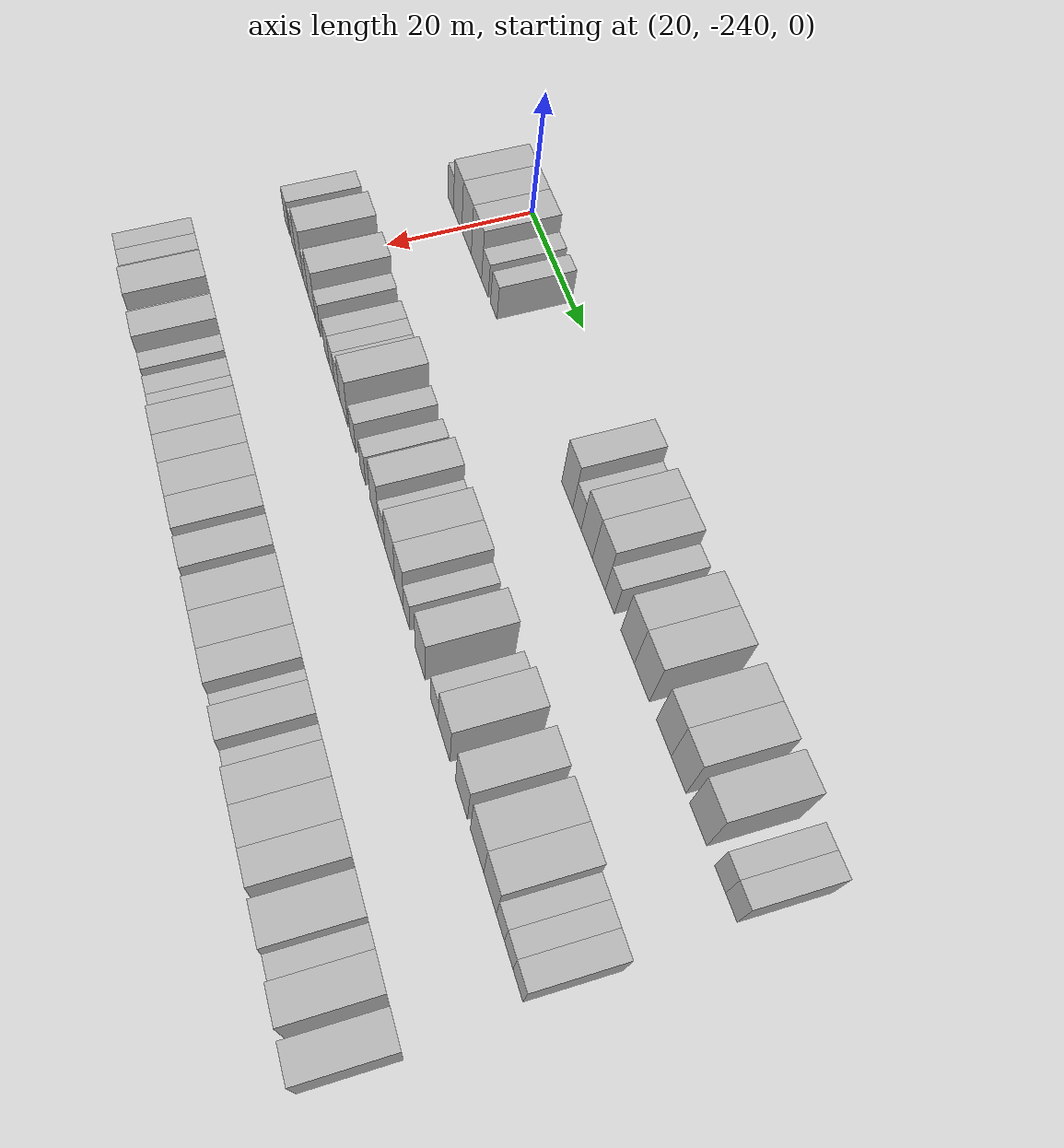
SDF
<sdf version="1.6">
 <world name="default">
  <model name="building_1">
   <static>1</static>
   <pose>25.0000 -244.7175 0 0.000000 0.000000 0.000000</pose>
   <link name="link">
    <pose>0 0 3.00 0 0 0</pose>
    <collision name="collision"><geometry><box><size>10.0000 2.5651 6.0000</size></box></geometry></collision>
    <visual name="visual">
     <cast_shadows>0</cast_shadows>
     <geometry><box><size>10.0000 2.5651 6.0000</size></box></geometry>
     <material>
      <script>
       <uri>model://HANNAS_wall/materials/scripts</uri>
       <uri>model://HANNAS_wall/materials/textures</uri>
       <name>vrc/HANNAS_wall</name>
      </script>
     </material>
    </visual>
   </link>
  </model>
  <model name="building_2">
   <static>1</static>
   <pose>25.0000 -241.5264 0 0.000000 0.000000 0.000000</pose>
   <link name="link">
    <pose>0 0 4.50 0 0 0</pose>
    <collision name="collision"><geometry><box><size>10.0000 3.8170 9.0000</size></box></geometry></collision>
    <visual name="visual">
     <cast_shadows>0</cast_shadows>
     <geometry><box><size>10.0000 3.8170 9.0000</size></box></geometry>
     <material>
      <script>
       <uri>model://HANNAS_wall/materials/scripts</uri>
       <uri>model://HANNAS_wall/materials/textures</uri>
       <name>vrc/HANNAS_wall</name>
      </script>
     </material>
    </visual>
   </link>
  </model>
  <model name="building_3">
   <static>1</static>
   <pose>25.0000 -237.4763 0 0.000000 0.000000 0.000000</pose>
   <link name="link">
    <pose>0 0 4.50 0 0 0</pose>
    <collision name="collision"><geometry><box><size>10.0000 4.2832 9.0000</size></box></geometry></collision>
    <visual name="visual">
     <cast_shadows>0</cast_shadows>
     <geometry><box><size>10.0000 4.2832 9.0000</size></box></geometry>
     <material>
      <script>
       <uri>model://HANNAS_wall/materials/scripts</uri>
       <uri>model://HANNAS_wall/materials/textures</uri>
       <name>vrc/HANNAS_wall</name>
      </script>
     </material>
    </visual>
   </link>
  </model>
  <model name="building_4">
   <static>1</static>
   <pose>25.0000 -233.0855 0 0.000000 0.000000 0.000000</pose>
   <link name="link">
    <pose>0 0 4.50 0 0 0</pose>
    <collision name="collision"><geometry><box><size>10.0000 4.4983 9.0000</size></box></geometry></collision>
    <visual name="visual">
     <cast_shadows>0</cast_shadows>
     <geometry><box><size>10.0000 4.4983 9.0000</size></box></geometry>
     <material>
      <script>
       <uri>model://HANNAS_wall/materials/scripts</uri>
       <uri>model://HANNAS_wall/materials/textures</uri>
       <name>vrc/HANNAS_wall</name>
      </script>
     </material>
    </visual>
   </link>
  </model>
  <model name="building_5">
   <static>1</static>
   <pose>25.0000 -229.4291 0 0.000000 0.000000 0.000000</pose>
   <link name="link">
    <pose>0 0 3.00 0 0 0</pose>
    <collision name="collision"><geometry><box><size>10.0000 2.8145 6.0000</size></box></geometry></collision>
    <visual name="visual">
     <cast_shadows>0</cast_shadows>
     <geometry><box><size>10.0000 2.8145 6.0000</size></box></geometry>
     <material>
      <script>
       <uri>model://HANNAS_wall/materials/scripts</uri>
       <uri>model://HANNAS_wall/materials/textures</uri>
       <name>vrc/HANNAS_wall</name>
      </script>
     </material>
    </visual>
   </link>
  </model>
  <model name="building_6">
   <static>1</static>
   <pose>25.0000 -225.6760 0 0.000000 0.000000 0.000000</pose>
   <link name="link">
    <pose>0 0 3.00 0 0 0</pose>
    <collision name="collision"><geometry><box><size>10.0000 2.6918 6.0000</size></box></geometry></collision>
    <visual name="visual">
     <cast_shadows>0</cast_shadows>
     <geometry><box><size>10.0000 2.6918 6.0000</size></box></geometry>
     <material>
      <script>
       <uri>model://HANNAS_wall/materials/scripts</uri>
       <uri>model://HANNAS_wall/materials/textures</uri>
       <name>vrc/HANNAS_wall</name>
      </script>
     </material>
    </visual>
   </link>
  </model>
  <model name="building_7">
   <static>1</static>
   <pose>25.0000 -197.6810 0 0.000000 0.000000 0.000000</pose>
   <link name="link">
    <pose>0 0 4.50 0 0 0</pose>
    <collision name="collision"><geometry><box><size>10.0000 3.7661 9.0000</size></box></geometry></collision>
    <visual name="visual">
     <cast_shadows>0</cast_shadows>
     <geometry><box><size>10.0000 3.7661 9.0000</size></box></geometry>
     <material>
      <script>
       <uri>model://HANNAS_wall/materials/scripts</uri>
       <uri>model://HANNAS_wall/materials/textures</uri>
       <name>vrc/HANNAS_wall</name>
      </script>
     </material>
    </visual>
   </link>
  </model>
  <model name="building_8">
   <static>1</static>
   <pose>25.0000 -194.3592 0 0.000000 0.000000 0.000000</pose>
   <link name="link">
    <pose>0 0 3.00 0 0 0</pose>
    <collision name="collision"><geometry><box><size>10.0000 2.8775 6.0000</size></box></geometry></collision>
    <visual name="visual">
     <cast_shadows>0</cast_shadows>
     <geometry><box><size>10.0000 2.8775 6.0000</size></box></geometry>
     <material>
      <script>
       <uri>model://HANNAS_wall/materials/scripts</uri>
       <uri>model://HANNAS_wall/materials/textures</uri>
       <name>vrc/HANNAS_wall</name>
      </script>
     </material>
    </visual>
   </link>
  </model>
  <model name="building_9">
   <static>1</static>
   <pose>25.0000 -191.0394 0 0.000000 0.000000 0.000000</pose>
   <link name="link">
    <pose>0 0 4.50 0 0 0</pose>
    <collision name="collision"><geometry><box><size>10.0000 3.7622 9.0000</size></box></geometry></collision>
    <visual name="visual">
     <cast_shadows>0</cast_shadows>
     <geometry><box><size>10.0000 3.7622 9.0000</size></box></geometry>
     <material>
      <script>
       <uri>model://HANNAS_wall/materials/scripts</uri>
       <uri>model://HANNAS_wall/materials/textures</uri>
       <name>vrc/HANNAS_wall</name>
      </script>
     </material>
    </visual>
   </link>
  </model>
  <model name="building_10">
   <static>1</static>
   <pose>25.0000 -187.0936 0 0.000000 0.000000 0.000000</pose>
   <link name="link">
    <pose>0 0 4.50 0 0 0</pose>
    <collision name="collision"><geometry><box><size>10.0000 4.1294 9.0000</size></box></geometry></collision>
    <visual name="visual">
     <cast_shadows>0</cast_shadows>
     <geometry><box><size>10.0000 4.1294 9.0000</size></box></geometry>
     <material>
      <script>
       <uri>model://HANNAS_wall/materials/scripts</uri>
       <uri>model://HANNAS_wall/materials/textures</uri>
       <name>vrc/HANNAS_wall</name>
      </script>
     </material>
    </visual>
   </link>
  </model>
  <model name="building_11">
   <static>1</static>
   <pose>25.0000 -183.5740 0 0.000000 0.000000 0.000000</pose>
   <link name="link">
    <pose>0 0 3.00 0 0 0</pose>
    <collision name="collision"><geometry><box><size>10.0000 2.9100 6.0000</size></box></geometry></collision>
    <visual name="visual">
     <cast_shadows>0</cast_shadows>
     <geometry><box><size>10.0000 2.9100 6.0000</size></box></geometry>
     <material>
      <script>
       <uri>model://HANNAS_wall/materials/scripts</uri>
       <uri>model://HANNAS_wall/materials/textures</uri>
       <name>vrc/HANNAS_wall</name>
      </script>
     </material>
    </visual>
   </link>
  </model>
  <model name="building_12">
   <static>1</static>
   <pose>25.0000 -178.0836 0 0.000000 0.000000 0.000000</pose>
   <link name="link">
    <pose>0 0 4.50 0 0 0</pose>
    <collision name="collision"><geometry><box><size>10.0000 4.0708 9.0000</size></box></geometry></collision>
    <visual name="visual">
     <cast_shadows>0</cast_shadows>
     <geometry><box><size>10.0000 4.0708 9.0000</size></box></geometry>
     <material>
      <script>
       <uri>model://HANNAS_wall/materials/scripts</uri>
       <uri>model://HANNAS_wall/materials/textures</uri>
       <name>vrc/HANNAS_wall</name>
      </script>
     </material>
    </visual>
   </link>
  </model>
  <model name="building_13">
   <static>1</static>
   <pose>25.0000 -173.8300 0 0.000000 0.000000 0.000000</pose>
   <link name="link">
    <pose>0 0 4.50 0 0 0</pose>
    <collision name="collision"><geometry><box><size>10.0000 4.4364 9.0000</size></box></geometry></collision>
    <visual name="visual">
     <cast_shadows>0</cast_shadows>
     <geometry><box><size>10.0000 4.4364 9.0000</size></box></geometry>
     <material>
      <script>
       <uri>model://HANNAS_wall/materials/scripts</uri>
       <uri>model://HANNAS_wall/materials/textures</uri>
       <name>vrc/HANNAS_wall</name>
      </script>
     </material>
    </visual>
   </link>
  </model>
  <model name="building_14">
   <static>1</static>
   <pose>25.0000 -167.5434 0 0.000000 0.000000 0.000000</pose>
   <link name="link">
    <pose>0 0 4.50 0 0 0</pose>
    <collision name="collision"><geometry><box><size>10.0000 4.1368 9.0000</size></box></geometry></collision>
    <visual name="visual">
     <cast_shadows>0</cast_shadows>
     <geometry><box><size>10.0000 4.1368 9.0000</size></box></geometry>
     <material>
      <script>
       <uri>model://HANNAS_wall/materials/scripts</uri>
       <uri>model://HANNAS_wall/materials/textures</uri>
       <name>vrc/HANNAS_wall</name>
      </script>
     </material>
    </visual>
   </link>
  </model>
  <model name="building_15">
   <static>1</static>
   <pose>25.0000 -163.4816 0 0.000000 0.000000 0.000000</pose>
   <link name="link">
    <pose>0 0 4.50 0 0 0</pose>
    <collision name="collision"><geometry><box><size>10.0000 3.9867 9.0000</size></box></geometry></collision>
    <visual name="visual">
     <cast_shadows>0</cast_shadows>
     <geometry><box><size>10.0000 3.9867 9.0000</size></box></geometry>
     <material>
      <script>
       <uri>model://HANNAS_wall/materials/scripts</uri>
       <uri>model://HANNAS_wall/materials/textures</uri>
       <name>vrc/HANNAS_wall</name>
      </script>
     </material>
    </visual>
   </link>
  </model>
  <model name="building_16">
   <static>1</static>
   <pose>25.0000 -158.2606 0 0.000000 0.000000 0.000000</pose>
   <link name="link">
    <pose>0 0 4.50 0 0 0</pose>
    <collision name="collision"><geometry><box><size>10.0000 4.4554 9.0000</size></box></geometry></collision>
    <visual name="visual">
     <cast_shadows>0</cast_shadows>
     <geometry><box><size>10.0000 4.4554 9.0000</size></box></geometry>
     <material>
      <script>
       <uri>model://HANNAS_wall/materials/scripts</uri>
       <uri>model://HANNAS_wall/materials/textures</uri>
       <name>vrc/HANNAS_wall</name>
      </script>
     </material>
    </visual>
   </link>
  </model>
  <model name="building_17">
   <static>1</static>
   <pose>25.0000 -152.6770 0 0.000000 0.000000 0.000000</pose>
   <link name="link">
    <pose>0 0 3.00 0 0 0</pose>
    <collision name="collision"><geometry><box><size>10.0000 2.7118 6.0000</size></box></geometry></collision>
    <visual name="visual">
     <cast_shadows>0</cast_shadows>
     <geometry><box><size>10.0000 2.7118 6.0000</size></box></geometry>
     <material>
      <script>
       <uri>model://HANNAS_wall/materials/scripts</uri>
       <uri>model://HANNAS_wall/materials/textures</uri>
       <name>vrc/HANNAS_wall</name>
      </script>
     </material>
    </visual>
   </link>
  </model>
  <model name="building_18">
   <static>1</static>
   <pose>25.0000 -149.9093 0 0.000000 0.000000 0.000000</pose>
   <link name="link">
    <pose>0 0 3.00 0 0 0</pose>
    <collision name="collision"><geometry><box><size>10.0000 2.8237 6.0000</size></box></geometry></collision>
    <visual name="visual">
     <cast_shadows>0</cast_shadows>
     <geometry><box><size>10.0000 2.8237 6.0000</size></box></geometry>
     <material>
      <script>
       <uri>model://HANNAS_wall/materials/scripts</uri>
       <uri>model://HANNAS_wall/materials/textures</uri>
       <name>vrc/HANNAS_wall</name>
      </script>
     </material>
    </visual>
   </link>
  </model>
  <model name="building_109">
   <static>1</static>
   <pose>47.0000 -246.5582 0 0.000000 0.000000 0.000000</pose>
   <link name="link">
    <pose>0 0 3.00 0 0 0</pose>
    <collision name="collision"><geometry><box><size>10.0000 2.8836 6.0000</size></box></geometry></collision>
    <visual name="visual">
     <cast_shadows>0</cast_shadows>
     <geometry><box><size>10.0000 2.8836 6.0000</size></box></geometry>
     <material>
      <script>
       <uri>model://HANNAS_wall/materials/scripts</uri>
       <uri>model://HANNAS_wall/materials/textures</uri>
       <name>vrc/HANNAS_wall</name>
      </script>
     </material>
    </visual>
   </link>
  </model>
  <model name="building_110">
   <static>1</static>
   <pose>47.0000 -242.6752 0 0.000000 0.000000 0.000000</pose>
   <link name="link">
    <pose>0 0 3.00 0 0 0</pose>
    <collision name="collision"><geometry><box><size>10.0000 2.8824 6.0000</size></box></geometry></collision>
    <visual name="visual">
     <cast_shadows>0</cast_shadows>
     <geometry><box><size>10.0000 2.8824 6.0000</size></box></geometry>
     <material>
      <script>
       <uri>model://HANNAS_wall/materials/scripts</uri>
       <uri>model://HANNAS_wall/materials/textures</uri>
       <name>vrc/HANNAS_wall</name>
      </script>
     </material>
    </visual>
   </link>
  </model>
  <model name="building_111">
   <static>1</static>
   <pose>47.0000 -239.1597 0 0.000000 0.000000 0.000000</pose>
   <link name="link">
    <pose>0 0 4.50 0 0 0</pose>
    <collision name="collision"><geometry><box><size>10.0000 4.1484 9.0000</size></box></geometry></collision>
    <visual name="visual">
     <cast_shadows>0</cast_shadows>
     <geometry><box><size>10.0000 4.1484 9.0000</size></box></geometry>
     <material>
      <script>
       <uri>model://HANNAS_wall/materials/scripts</uri>
       <uri>model://HANNAS_wall/materials/textures</uri>
       <name>vrc/HANNAS_wall</name>
      </script>
     </material>
    </visual>
   </link>
  </model>
  <model name="building_112">
   <static>1</static>
   <pose>47.0000 -235.6971 0 0.000000 0.000000 0.000000</pose>
   <link name="link">
    <pose>0 0 3.00 0 0 0</pose>
    <collision name="collision"><geometry><box><size>10.0000 2.7768 6.0000</size></box></geometry></collision>
    <visual name="visual">
     <cast_shadows>0</cast_shadows>
     <geometry><box><size>10.0000 2.7768 6.0000</size></box></geometry>
     <material>
      <script>
       <uri>model://HANNAS_wall/materials/scripts</uri>
       <uri>model://HANNAS_wall/materials/textures</uri>
       <name>vrc/HANNAS_wall</name>
      </script>
     </material>
    </visual>
   </link>
  </model>
  <model name="building_113">
   <static>1</static>
   <pose>47.0000 -232.2926 0 0.000000 0.000000 0.000000</pose>
   <link name="link">
    <pose>0 0 4.50 0 0 0</pose>
    <collision name="collision"><geometry><box><size>10.0000 4.0321 9.0000</size></box></geometry></collision>
    <visual name="visual">
     <cast_shadows>0</cast_shadows>
     <geometry><box><size>10.0000 4.0321 9.0000</size></box></geometry>
     <material>
      <script>
       <uri>model://HANNAS_wall/materials/scripts</uri>
       <uri>model://HANNAS_wall/materials/textures</uri>
       <name>vrc/HANNAS_wall</name>
      </script>
     </material>
    </visual>
   </link>
  </model>
  <model name="building_114">
   <static>1</static>
   <pose>47.0000 -229.0246 0 0.000000 0.000000 0.000000</pose>
   <link name="link">
    <pose>0 0 3.00 0 0 0</pose>
    <collision name="collision"><geometry><box><size>10.0000 2.5040 6.0000</size></box></geometry></collision>
    <visual name="visual">
     <cast_shadows>0</cast_shadows>
     <geometry><box><size>10.0000 2.5040 6.0000</size></box></geometry>
     <material>
      <script>
       <uri>model://HANNAS_wall/materials/scripts</uri>
       <uri>model://HANNAS_wall/materials/textures</uri>
       <name>vrc/HANNAS_wall</name>
      </script>
     </material>
    </visual>
   </link>
  </model>
  <model name="building_115">
   <static>1</static>
   <pose>47.0000 -224.4021 0 0.000000 0.000000 0.000000</pose>
   <link name="link">
    <pose>0 0 3.00 0 0 0</pose>
    <collision name="collision"><geometry><box><size>10.0000 2.7409 6.0000</size></box></geometry></collision>
    <visual name="visual">
     <cast_shadows>0</cast_shadows>
     <geometry><box><size>10.0000 2.7409 6.0000</size></box></geometry>
     <material>
      <script>
       <uri>model://HANNAS_wall/materials/scripts</uri>
       <uri>model://HANNAS_wall/materials/textures</uri>
       <name>vrc/HANNAS_wall</name>
      </script>
     </material>
    </visual>
   </link>
  </model>
  <model name="building_116">
   <static>1</static>
   <pose>47.0000 -221.7665 0 0.000000 0.000000 0.000000</pose>
   <link name="link">
    <pose>0 0 3.00 0 0 0</pose>
    <collision name="collision"><geometry><box><size>10.0000 2.5304 6.0000</size></box></geometry></collision>
    <visual name="visual">
     <cast_shadows>0</cast_shadows>
     <geometry><box><size>10.0000 2.5304 6.0000</size></box></geometry>
     <material>
      <script>
       <uri>model://HANNAS_wall/materials/scripts</uri>
       <uri>model://HANNAS_wall/materials/textures</uri>
       <name>vrc/HANNAS_wall</name>
      </script>
     </material>
    </visual>
   </link>
  </model>
  <model name="building_117">
   <static>1</static>
   <pose>47.0000 -219.1269 0 0.000000 0.000000 0.000000</pose>
   <link name="link">
    <pose>0 0 3.00 0 0 0</pose>
    <collision name="collision"><geometry><box><size>10.0000 2.7487 6.0000</size></box></geometry></collision>
    <visual name="visual">
     <cast_shadows>0</cast_shadows>
     <geometry><box><size>10.0000 2.7487 6.0000</size></box></geometry>
     <material>
      <script>
       <uri>model://HANNAS_wall/materials/scripts</uri>
       <uri>model://HANNAS_wall/materials/textures</uri>
       <name>vrc/HANNAS_wall</name>
      </script>
     </material>
    </visual>
   </link>
  </model>
  <model name="building_118">
   <static>1</static>
   <pose>47.0000 -215.7580 0 0.000000 0.000000 0.000000</pose>
   <link name="link">
    <pose>0 0 4.50 0 0 0</pose>
    <collision name="collision"><geometry><box><size>10.0000 3.9893 9.0000</size></box></geometry></collision>
    <visual name="visual">
     <cast_shadows>0</cast_shadows>
     <geometry><box><size>10.0000 3.9893 9.0000</size></box></geometry>
     <material>
      <script>
       <uri>model://HANNAS_wall/materials/scripts</uri>
       <uri>model://HANNAS_wall/materials/textures</uri>
       <name>vrc/HANNAS_wall</name>
      </script>
     </material>
    </visual>
   </link>
  </model>
  <model name="building_119">
   <static>1</static>
   <pose>47.0000 -211.3882 0 0.000000 0.000000 0.000000</pose>
   <link name="link">
    <pose>0 0 3.00 0 0 0</pose>
    <collision name="collision"><geometry><box><size>10.0000 2.7503 6.0000</size></box></geometry></collision>
    <visual name="visual">
     <cast_shadows>0</cast_shadows>
     <geometry><box><size>10.0000 2.7503 6.0000</size></box></geometry>
     <material>
      <script>
       <uri>model://HANNAS_wall/materials/scripts</uri>
       <uri>model://HANNAS_wall/materials/textures</uri>
       <name>vrc/HANNAS_wall</name>
      </script>
     </material>
    </visual>
   </link>
  </model>
  <model name="building_120">
   <static>1</static>
   <pose>47.0000 -206.7193 0 0.000000 0.000000 0.000000</pose>
   <link name="link">
    <pose>0 0 3.00 0 0 0</pose>
    <collision name="collision"><geometry><box><size>10.0000 2.5874 6.0000</size></box></geometry></collision>
    <visual name="visual">
     <cast_shadows>0</cast_shadows>
     <geometry><box><size>10.0000 2.5874 6.0000</size></box></geometry>
     <material>
      <script>
       <uri>model://HANNAS_wall/materials/scripts</uri>
       <uri>model://HANNAS_wall/materials/textures</uri>
       <name>vrc/HANNAS_wall</name>
      </script>
     </material>
    </visual>
   </link>
  </model>
  <model name="building_121">
   <static>1</static>
   <pose>47.0000 -201.5570 0 0.000000 0.000000 0.000000</pose>
   <link name="link">
    <pose>0 0 4.50 0 0 0</pose>
    <collision name="collision"><geometry><box><size>10.0000 3.7371 9.0000</size></box></geometry></collision>
    <visual name="visual">
     <cast_shadows>0</cast_shadows>
     <geometry><box><size>10.0000 3.7371 9.0000</size></box></geometry>
     <material>
      <script>
       <uri>model://HANNAS_wall/materials/scripts</uri>
       <uri>model://HANNAS_wall/materials/textures</uri>
       <name>vrc/HANNAS_wall</name>
      </script>
     </material>
    </visual>
   </link>
  </model>
  <model name="building_122">
   <static>1</static>
   <pose>47.0000 -198.2478 0 0.000000 0.000000 0.000000</pose>
   <link name="link">
    <pose>0 0 3.00 0 0 0</pose>
    <collision name="collision"><geometry><box><size>10.0000 2.8813 6.0000</size></box></geometry></collision>
    <visual name="visual">
     <cast_shadows>0</cast_shadows>
     <geometry><box><size>10.0000 2.8813 6.0000</size></box></geometry>
     <material>
      <script>
       <uri>model://HANNAS_wall/materials/scripts</uri>
       <uri>model://HANNAS_wall/materials/textures</uri>
       <name>vrc/HANNAS_wall</name>
      </script>
     </material>
    </visual>
   </link>
  </model>
  <model name="building_123">
   <static>1</static>
   <pose>47.0000 -194.7404 0 0.000000 0.000000 0.000000</pose>
   <link name="link">
    <pose>0 0 4.50 0 0 0</pose>
    <collision name="collision"><geometry><box><size>10.0000 4.1336 9.0000</size></box></geometry></collision>
    <visual name="visual">
     <cast_shadows>0</cast_shadows>
     <geometry><box><size>10.0000 4.1336 9.0000</size></box></geometry>
     <material>
      <script>
       <uri>model://HANNAS_wall/materials/scripts</uri>
       <uri>model://HANNAS_wall/materials/textures</uri>
       <name>vrc/HANNAS_wall</name>
      </script>
     </material>
    </visual>
   </link>
  </model>
  <model name="building_124">
   <static>1</static>
   <pose>47.0000 -190.8654 0 0.000000 0.000000 0.000000</pose>
   <link name="link">
    <pose>0 0 4.50 0 0 0</pose>
    <collision name="collision"><geometry><box><size>10.0000 3.6163 9.0000</size></box></geometry></collision>
    <visual name="visual">
     <cast_shadows>0</cast_shadows>
     <geometry><box><size>10.0000 3.6163 9.0000</size></box></geometry>
     <material>
      <script>
       <uri>model://HANNAS_wall/materials/scripts</uri>
       <uri>model://HANNAS_wall/materials/textures</uri>
       <name>vrc/HANNAS_wall</name>
      </script>
     </material>
    </visual>
   </link>
  </model>
  <model name="building_125">
   <static>1</static>
   <pose>47.0000 -187.7594 0 0.000000 0.000000 0.000000</pose>
   <link name="link">
    <pose>0 0 3.00 0 0 0</pose>
    <collision name="collision"><geometry><box><size>10.0000 2.5958 6.0000</size></box></geometry></collision>
    <visual name="visual">
     <cast_shadows>0</cast_shadows>
     <geometry><box><size>10.0000 2.5958 6.0000</size></box></geometry>
     <material>
      <script>
       <uri>model://HANNAS_wall/materials/scripts</uri>
       <uri>model://HANNAS_wall/materials/textures</uri>
       <name>vrc/HANNAS_wall</name>
      </script>
     </material>
    </visual>
   </link>
  </model>
  <model name="building_126">
   <static>1</static>
   <pose>47.0000 -182.4732 0 0.000000 0.000000 0.000000</pose>
   <link name="link">
    <pose>0 0 4.50 0 0 0</pose>
    <collision name="collision"><geometry><box><size>10.0000 3.9765 9.0000</size></box></geometry></collision>
    <visual name="visual">
     <cast_shadows>0</cast_shadows>
     <geometry><box><size>10.0000 3.9765 9.0000</size></box></geometry>
     <material>
      <script>
       <uri>model://HANNAS_wall/materials/scripts</uri>
       <uri>model://HANNAS_wall/materials/textures</uri>
       <name>vrc/HANNAS_wall</name>
      </script>
     </material>
    </visual>
   </link>
  </model>
  <model name="building_127">
   <static>1</static>
   <pose>47.0000 -176.9930 0 0.000000 0.000000 0.000000</pose>
   <link name="link">
    <pose>0 0 3.00 0 0 0</pose>
    <collision name="collision"><geometry><box><size>10.0000 2.9840 6.0000</size></box></geometry></collision>
    <visual name="visual">
     <cast_shadows>0</cast_shadows>
     <geometry><box><size>10.0000 2.9840 6.0000</size></box></geometry>
     <material>
      <script>
       <uri>model://HANNAS_wall/materials/scripts</uri>
       <uri>model://HANNAS_wall/materials/textures</uri>
       <name>vrc/HANNAS_wall</name>
      </script>
     </material>
    </visual>
   </link>
  </model>
  <model name="building_128">
   <static>1</static>
   <pose>47.0000 -173.3692 0 0.000000 0.000000 0.000000</pose>
   <link name="link">
    <pose>0 0 4.50 0 0 0</pose>
    <collision name="collision"><geometry><box><size>10.0000 4.2635 9.0000</size></box></geometry></collision>
    <visual name="visual">
     <cast_shadows>0</cast_shadows>
     <geometry><box><size>10.0000 4.2635 9.0000</size></box></geometry>
     <material>
      <script>
       <uri>model://HANNAS_wall/materials/scripts</uri>
       <uri>model://HANNAS_wall/materials/textures</uri>
       <name>vrc/HANNAS_wall</name>
      </script>
     </material>
    </visual>
   </link>
  </model>
  <model name="building_129">
   <static>1</static>
   <pose>47.0000 -167.1779 0 0.000000 0.000000 0.000000</pose>
   <link name="link">
    <pose>0 0 4.50 0 0 0</pose>
    <collision name="collision"><geometry><box><size>10.0000 4.1192 9.0000</size></box></geometry></collision>
    <visual name="visual">
     <cast_shadows>0</cast_shadows>
     <geometry><box><size>10.0000 4.1192 9.0000</size></box></geometry>
     <material>
      <script>
       <uri>model://HANNAS_wall/materials/scripts</uri>
       <uri>model://HANNAS_wall/materials/textures</uri>
       <name>vrc/HANNAS_wall</name>
      </script>
     </material>
    </visual>
   </link>
  </model>
  <model name="building_130">
   <static>1</static>
   <pose>47.0000 -161.9019 0 0.000000 0.000000 0.000000</pose>
   <link name="link">
    <pose>0 0 4.50 0 0 0</pose>
    <collision name="collision"><geometry><box><size>10.0000 4.4329 9.0000</size></box></geometry></collision>
    <visual name="visual">
     <cast_shadows>0</cast_shadows>
     <geometry><box><size>10.0000 4.4329 9.0000</size></box></geometry>
     <material>
      <script>
       <uri>model://HANNAS_wall/materials/scripts</uri>
       <uri>model://HANNAS_wall/materials/textures</uri>
       <name>vrc/HANNAS_wall</name>
      </script>
     </material>
    </visual>
   </link>
  </model>
  <model name="building_131">
   <static>1</static>
   <pose>47.0000 -157.6415 0 0.000000 0.000000 0.000000</pose>
   <link name="link">
    <pose>0 0 4.50 0 0 0</pose>
    <collision name="collision"><geometry><box><size>10.0000 4.0878 9.0000</size></box></geometry></collision>
    <visual name="visual">
     <cast_shadows>0</cast_shadows>
     <geometry><box><size>10.0000 4.0878 9.0000</size></box></geometry>
     <material>
      <script>
       <uri>model://HANNAS_wall/materials/scripts</uri>
       <uri>model://HANNAS_wall/materials/textures</uri>
       <name>vrc/HANNAS_wall</name>
      </script>
     </material>
    </visual>
   </link>
  </model>
  <model name="building_132">
   <static>1</static>
   <pose>47.0000 -154.3256 0 0.000000 0.000000 0.000000</pose>
   <link name="link">
    <pose>0 0 3.00 0 0 0</pose>
    <collision name="collision"><geometry><box><size>10.0000 2.5441 6.0000</size></box></geometry></collision>
    <visual name="visual">
     <cast_shadows>0</cast_shadows>
     <geometry><box><size>10.0000 2.5441 6.0000</size></box></geometry>
     <material>
      <script>
       <uri>model://HANNAS_wall/materials/scripts</uri>
       <uri>model://HANNAS_wall/materials/textures</uri>
       <name>vrc/HANNAS_wall</name>
      </script>
     </material>
    </visual>
   </link>
  </model>
  <model name="building_133">
   <static>1</static>
   <pose>47.0000 -151.7381 0 0.000000 0.000000 0.000000</pose>
   <link name="link">
    <pose>0 0 3.00 0 0 0</pose>
    <collision name="collision"><geometry><box><size>10.0000 2.6308 6.0000</size></box></geometry></collision>
    <visual name="visual">
     <cast_shadows>0</cast_shadows>
     <geometry><box><size>10.0000 2.6308 6.0000</size></box></geometry>
     <material>
      <script>
       <uri>model://HANNAS_wall/materials/scripts</uri>
       <uri>model://HANNAS_wall/materials/textures</uri>
       <name>vrc/HANNAS_wall</name>
      </script>
     </material>
    </visual>
   </link>
  </model>
  <model name="building_134">
   <static>1</static>
   <pose>47.0000 -148.9308 0 0.000000 0.000000 0.000000</pose>
   <link name="link">
    <pose>0 0 3.00 0 0 0</pose>
    <collision name="collision"><geometry><box><size>10.0000 2.9838 6.0000</size></box></geometry></collision>
    <visual name="visual">
     <cast_shadows>0</cast_shadows>
     <geometry><box><size>10.0000 2.9838 6.0000</size></box></geometry>
     <material>
      <script>
       <uri>model://HANNAS_wall/materials/scripts</uri>
       <uri>model://HANNAS_wall/materials/textures</uri>
       <name>vrc/HANNAS_wall</name>
      </script>
     </material>
    </visual>
   </link>
  </model>
  <model name="building_234">
   <static>1</static>
   <pose>69.0000 -244.6519 0 0.000000 0.000000 0.000000</pose>
   <link name="link">
    <pose>0 0 3.00 0 0 0</pose>
    <collision name="collision"><geometry><box><size>10.0000 2.6962 6.0000</size></box></geometry></collision>
    <visual name="visual">
     <cast_shadows>0</cast_shadows>
     <geometry><box><size>10.0000 2.6962 6.0000</size></box></geometry>
     <material>
      <script>
       <uri>model://HANNAS_wall/materials/scripts</uri>
       <uri>model://HANNAS_wall/materials/textures</uri>
       <name>vrc/HANNAS_wall</name>
      </script>
     </material>
    </visual>
   </link>
  </model>
  <model name="building_235">
   <static>1</static>
   <pose>69.0000 -241.9582 0 0.000000 0.000000 0.000000</pose>
   <link name="link">
    <pose>0 0 3.00 0 0 0</pose>
    <collision name="collision"><geometry><box><size>10.0000 2.6913 6.0000</size></box></geometry></collision>
    <visual name="visual">
     <cast_shadows>0</cast_shadows>
     <geometry><box><size>10.0000 2.6913 6.0000</size></box></geometry>
     <material>
      <script>
       <uri>model://HANNAS_wall/materials/scripts</uri>
       <uri>model://HANNAS_wall/materials/textures</uri>
       <name>vrc/HANNAS_wall</name>
      </script>
     </material>
    </visual>
   </link>
  </model>
  <model name="building_236">
   <static>1</static>
   <pose>69.0000 -239.1509 0 0.000000 0.000000 0.000000</pose>
   <link name="link">
    <pose>0 0 3.00 0 0 0</pose>
    <collision name="collision"><geometry><box><size>10.0000 2.9233 6.0000</size></box></geometry></collision>
    <visual name="visual">
     <cast_shadows>0</cast_shadows>
     <geometry><box><size>10.0000 2.9233 6.0000</size></box></geometry>
     <material>
      <script>
       <uri>model://HANNAS_wall/materials/scripts</uri>
       <uri>model://HANNAS_wall/materials/textures</uri>
       <name>vrc/HANNAS_wall</name>
      </script>
     </material>
    </visual>
   </link>
  </model>
  <model name="building_237">
   <static>1</static>
   <pose>69.0000 -235.5477 0 0.000000 0.000000 0.000000</pose>
   <link name="link">
    <pose>0 0 4.50 0 0 0</pose>
    <collision name="collision"><geometry><box><size>10.0000 4.2830 9.0000</size></box></geometry></collision>
    <visual name="visual">
     <cast_shadows>0</cast_shadows>
     <geometry><box><size>10.0000 4.2830 9.0000</size></box></geometry>
     <material>
      <script>
       <uri>model://HANNAS_wall/materials/scripts</uri>
       <uri>model://HANNAS_wall/materials/textures</uri>
       <name>vrc/HANNAS_wall</name>
      </script>
     </material>
    </visual>
   </link>
  </model>
  <model name="building_238">
   <static>1</static>
   <pose>69.0000 -232.0205 0 0.000000 0.000000 0.000000</pose>
   <link name="link">
    <pose>0 0 3.00 0 0 0</pose>
    <collision name="collision"><geometry><box><size>10.0000 2.7715 6.0000</size></box></geometry></collision>
    <visual name="visual">
     <cast_shadows>0</cast_shadows>
     <geometry><box><size>10.0000 2.7715 6.0000</size></box></geometry>
     <material>
      <script>
       <uri>model://HANNAS_wall/materials/scripts</uri>
       <uri>model://HANNAS_wall/materials/textures</uri>
       <name>vrc/HANNAS_wall</name>
      </script>
     </material>
    </visual>
   </link>
  </model>
  <model name="building_239">
   <static>1</static>
   <pose>69.0000 -228.7466 0 0.000000 0.000000 0.000000</pose>
   <link name="link">
    <pose>0 0 4.50 0 0 0</pose>
    <collision name="collision"><geometry><box><size>10.0000 3.7762 9.0000</size></box></geometry></collision>
    <visual name="visual">
     <cast_shadows>0</cast_shadows>
     <geometry><box><size>10.0000 3.7762 9.0000</size></box></geometry>
     <material>
      <script>
       <uri>model://HANNAS_wall/materials/scripts</uri>
       <uri>model://HANNAS_wall/materials/textures</uri>
       <name>vrc/HANNAS_wall</name>
      </script>
     </material>
    </visual>
   </link>
  </model>
  <model name="building_240">
   <static>1</static>
   <pose>69.0000 -225.5995 0 0.000000 0.000000 0.000000</pose>
   <link name="link">
    <pose>0 0 3.00 0 0 0</pose>
    <collision name="collision"><geometry><box><size>10.0000 2.5180 6.0000</size></box></geometry></collision>
    <visual name="visual">
     <cast_shadows>0</cast_shadows>
     <geometry><box><size>10.0000 2.5180 6.0000</size></box></geometry>
     <material>
      <script>
       <uri>model://HANNAS_wall/materials/scripts</uri>
       <uri>model://HANNAS_wall/materials/textures</uri>
       <name>vrc/HANNAS_wall</name>
      </script>
     </material>
    </visual>
   </link>
  </model>
  <model name="building_241">
   <static>1</static>
   <pose>69.0000 -221.9977 0 0.000000 0.000000 0.000000</pose>
   <link name="link">
    <pose>0 0 3.00 0 0 0</pose>
    <collision name="collision"><geometry><box><size>10.0000 2.6857 6.0000</size></box></geometry></collision>
    <visual name="visual">
     <cast_shadows>0</cast_shadows>
     <geometry><box><size>10.0000 2.6857 6.0000</size></box></geometry>
     <material>
      <script>
       <uri>model://HANNAS_wall/materials/scripts</uri>
       <uri>model://HANNAS_wall/materials/textures</uri>
       <name>vrc/HANNAS_wall</name>
      </script>
     </material>
    </visual>
   </link>
  </model>
  <model name="building_242">
   <static>1</static>
   <pose>69.0000 -219.2828 0 0.000000 0.000000 0.000000</pose>
   <link name="link">
    <pose>0 0 3.00 0 0 0</pose>
    <collision name="collision"><geometry><box><size>10.0000 2.7441 6.0000</size></box></geometry></collision>
    <visual name="visual">
     <cast_shadows>0</cast_shadows>
     <geometry><box><size>10.0000 2.7441 6.0000</size></box></geometry>
     <material>
      <script>
       <uri>model://HANNAS_wall/materials/scripts</uri>
       <uri>model://HANNAS_wall/materials/textures</uri>
       <name>vrc/HANNAS_wall</name>
      </script>
     </material>
    </visual>
   </link>
  </model>
  <model name="building_243">
   <static>1</static>
   <pose>69.0000 -214.9175 0 0.000000 0.000000 0.000000</pose>
   <link name="link">
    <pose>0 0 4.50 0 0 0</pose>
    <collision name="collision"><geometry><box><size>10.0000 3.9863 9.0000</size></box></geometry></collision>
    <visual name="visual">
     <cast_shadows>0</cast_shadows>
     <geometry><box><size>10.0000 3.9863 9.0000</size></box></geometry>
     <material>
      <script>
       <uri>model://HANNAS_wall/materials/scripts</uri>
       <uri>model://HANNAS_wall/materials/textures</uri>
       <name>vrc/HANNAS_wall</name>
      </script>
     </material>
    </visual>
   </link>
  </model>
  <model name="building_244">
   <static>1</static>
   <pose>69.0000 -211.0368 0 0.000000 0.000000 0.000000</pose>
   <link name="link">
    <pose>0 0 4.50 0 0 0</pose>
    <collision name="collision"><geometry><box><size>10.0000 3.7751 9.0000</size></box></geometry></collision>
    <visual name="visual">
     <cast_shadows>0</cast_shadows>
     <geometry><box><size>10.0000 3.7751 9.0000</size></box></geometry>
     <material>
      <script>
       <uri>model://HANNAS_wall/materials/scripts</uri>
       <uri>model://HANNAS_wall/materials/textures</uri>
       <name>vrc/HANNAS_wall</name>
      </script>
     </material>
    </visual>
   </link>
  </model>
  <model name="building_245">
   <static>1</static>
   <pose>69.0000 -206.9877 0 0.000000 0.000000 0.000000</pose>
   <link name="link">
    <pose>0 0 4.50 0 0 0</pose>
    <collision name="collision"><geometry><box><size>10.0000 4.3233 9.0000</size></box></geometry></collision>
    <visual name="visual">
     <cast_shadows>0</cast_shadows>
     <geometry><box><size>10.0000 4.3233 9.0000</size></box></geometry>
     <material>
      <script>
       <uri>model://HANNAS_wall/materials/scripts</uri>
       <uri>model://HANNAS_wall/materials/textures</uri>
       <name>vrc/HANNAS_wall</name>
      </script>
     </material>
    </visual>
   </link>
  </model>
  <model name="building_246">
   <static>1</static>
   <pose>69.0000 -202.8105 0 0.000000 0.000000 0.000000</pose>
   <link name="link">
    <pose>0 0 4.50 0 0 0</pose>
    <collision name="collision"><geometry><box><size>10.0000 4.0311 9.0000</size></box></geometry></collision>
    <visual name="visual">
     <cast_shadows>0</cast_shadows>
     <geometry><box><size>10.0000 4.0311 9.0000</size></box></geometry>
     <material>
      <script>
       <uri>model://HANNAS_wall/materials/scripts</uri>
       <uri>model://HANNAS_wall/materials/textures</uri>
       <name>vrc/HANNAS_wall</name>
      </script>
     </material>
    </visual>
   </link>
  </model>
  <model name="building_247">
   <static>1</static>
   <pose>69.0000 -197.8831 0 0.000000 0.000000 0.000000</pose>
   <link name="link">
    <pose>0 0 4.50 0 0 0</pose>
    <collision name="collision"><geometry><box><size>10.0000 3.8236 9.0000</size></box></geometry></collision>
    <visual name="visual">
     <cast_shadows>0</cast_shadows>
     <geometry><box><size>10.0000 3.8236 9.0000</size></box></geometry>
     <material>
      <script>
       <uri>model://HANNAS_wall/materials/scripts</uri>
       <uri>model://HANNAS_wall/materials/textures</uri>
       <name>vrc/HANNAS_wall</name>
      </script>
     </material>
    </visual>
   </link>
  </model>
  <model name="building_248">
   <static>1</static>
   <pose>69.0000 -192.9673 0 0.000000 0.000000 0.000000</pose>
   <link name="link">
    <pose>0 0 4.50 0 0 0</pose>
    <collision name="collision"><geometry><box><size>10.0000 4.0080 9.0000</size></box></geometry></collision>
    <visual name="visual">
     <cast_shadows>0</cast_shadows>
     <geometry><box><size>10.0000 4.0080 9.0000</size></box></geometry>
     <material>
      <script>
       <uri>model://HANNAS_wall/materials/scripts</uri>
       <uri>model://HANNAS_wall/materials/textures</uri>
       <name>vrc/HANNAS_wall</name>
      </script>
     </material>
    </visual>
   </link>
  </model>
  <model name="building_249">
   <static>1</static>
   <pose>69.0000 -188.8151 0 0.000000 0.000000 0.000000</pose>
   <link name="link">
    <pose>0 0 4.50 0 0 0</pose>
    <collision name="collision"><geometry><box><size>10.0000 4.2963 9.0000</size></box></geometry></collision>
    <visual name="visual">
     <cast_shadows>0</cast_shadows>
     <geometry><box><size>10.0000 4.2963 9.0000</size></box></geometry>
     <material>
      <script>
       <uri>model://HANNAS_wall/materials/scripts</uri>
       <uri>model://HANNAS_wall/materials/textures</uri>
       <name>vrc/HANNAS_wall</name>
      </script>
     </material>
    </visual>
   </link>
  </model>
  <model name="building_250">
   <static>1</static>
   <pose>69.0000 -184.7742 0 0.000000 0.000000 0.000000</pose>
   <link name="link">
    <pose>0 0 4.50 0 0 0</pose>
    <collision name="collision"><geometry><box><size>10.0000 3.7856 9.0000</size></box></geometry></collision>
    <visual name="visual">
     <cast_shadows>0</cast_shadows>
     <geometry><box><size>10.0000 3.7856 9.0000</size></box></geometry>
     <material>
      <script>
       <uri>model://HANNAS_wall/materials/scripts</uri>
       <uri>model://HANNAS_wall/materials/textures</uri>
       <name>vrc/HANNAS_wall</name>
      </script>
     </material>
    </visual>
   </link>
  </model>
  <model name="building_251">
   <static>1</static>
   <pose>69.0000 -181.6604 0 0.000000 0.000000 0.000000</pose>
   <link name="link">
    <pose>0 0 3.00 0 0 0</pose>
    <collision name="collision"><geometry><box><size>10.0000 2.4419 6.0000</size></box></geometry></collision>
    <visual name="visual">
     <cast_shadows>0</cast_shadows>
     <geometry><box><size>10.0000 2.4419 6.0000</size></box></geometry>
     <material>
      <script>
       <uri>model://HANNAS_wall/materials/scripts</uri>
       <uri>model://HANNAS_wall/materials/textures</uri>
       <name>vrc/HANNAS_wall</name>
      </script>
     </material>
    </visual>
   </link>
  </model>
  <model name="building_252">
   <static>1</static>
   <pose>69.0000 -178.6348 0 0.000000 0.000000 0.000000</pose>
   <link name="link">
    <pose>0 0 4.50 0 0 0</pose>
    <collision name="collision"><geometry><box><size>10.0000 3.6091 9.0000</size></box></geometry></collision>
    <visual name="visual">
     <cast_shadows>0</cast_shadows>
     <geometry><box><size>10.0000 3.6091 9.0000</size></box></geometry>
     <material>
      <script>
       <uri>model://HANNAS_wall/materials/scripts</uri>
       <uri>model://HANNAS_wall/materials/textures</uri>
       <name>vrc/HANNAS_wall</name>
      </script>
     </material>
    </visual>
   </link>
  </model>
  <model name="building_253">
   <static>1</static>
   <pose>69.0000 -175.4935 0 0.000000 0.000000 0.000000</pose>
   <link name="link">
    <pose>0 0 3.00 0 0 0</pose>
    <collision name="collision"><geometry><box><size>10.0000 2.6735 6.0000</size></box></geometry></collision>
    <visual name="visual">
     <cast_shadows>0</cast_shadows>
     <geometry><box><size>10.0000 2.6735 6.0000</size></box></geometry>
     <material>
      <script>
       <uri>model://HANNAS_wall/materials/scripts</uri>
       <uri>model://HANNAS_wall/materials/textures</uri>
       <name>vrc/HANNAS_wall</name>
      </script>
     </material>
    </visual>
   </link>
  </model>
  <model name="building_254">
   <static>1</static>
   <pose>69.0000 -172.2834 0 0.000000 0.000000 0.000000</pose>
   <link name="link">
    <pose>0 0 4.50 0 0 0</pose>
    <collision name="collision"><geometry><box><size>10.0000 3.7468 9.0000</size></box></geometry></collision>
    <visual name="visual">
     <cast_shadows>0</cast_shadows>
     <geometry><box><size>10.0000 3.7468 9.0000</size></box></geometry>
     <material>
      <script>
       <uri>model://HANNAS_wall/materials/scripts</uri>
       <uri>model://HANNAS_wall/materials/textures</uri>
       <name>vrc/HANNAS_wall</name>
      </script>
     </material>
    </visual>
   </link>
  </model>
  <model name="building_255">
   <static>1</static>
   <pose>69.0000 -168.3476 0 0.000000 0.000000 0.000000</pose>
   <link name="link">
    <pose>0 0 4.50 0 0 0</pose>
    <collision name="collision"><geometry><box><size>10.0000 4.1249 9.0000</size></box></geometry></collision>
    <visual name="visual">
     <cast_shadows>0</cast_shadows>
     <geometry><box><size>10.0000 4.1249 9.0000</size></box></geometry>
     <material>
      <script>
       <uri>model://HANNAS_wall/materials/scripts</uri>
       <uri>model://HANNAS_wall/materials/textures</uri>
       <name>vrc/HANNAS_wall</name>
      </script>
     </material>
    </visual>
   </link>
  </model>
  <model name="building_256">
   <static>1</static>
   <pose>69.0000 -164.4658 0 0.000000 0.000000 0.000000</pose>
   <link name="link">
    <pose>0 0 4.50 0 0 0</pose>
    <collision name="collision"><geometry><box><size>10.0000 3.6389 9.0000</size></box></geometry></collision>
    <visual name="visual">
     <cast_shadows>0</cast_shadows>
     <geometry><box><size>10.0000 3.6389 9.0000</size></box></geometry>
     <material>
      <script>
       <uri>model://HANNAS_wall/materials/scripts</uri>
       <uri>model://HANNAS_wall/materials/textures</uri>
       <name>vrc/HANNAS_wall</name>
      </script>
     </material>
    </visual>
   </link>
  </model>
  <model name="building_257">
   <static>1</static>
   <pose>69.0000 -159.4268 0 0.000000 0.000000 0.000000</pose>
   <link name="link">
    <pose>0 0 4.50 0 0 0</pose>
    <collision name="collision"><geometry><box><size>10.0000 4.4392 9.0000</size></box></geometry></collision>
    <visual name="visual">
     <cast_shadows>0</cast_shadows>
     <geometry><box><size>10.0000 4.4392 9.0000</size></box></geometry>
     <material>
      <script>
       <uri>model://HANNAS_wall/materials/scripts</uri>
       <uri>model://HANNAS_wall/materials/textures</uri>
       <name>vrc/HANNAS_wall</name>
      </script>
     </material>
    </visual>
   </link>
  </model>
  <model name="building_258">
   <static>1</static>
   <pose>69.0000 -155.8065 0 0.000000 0.000000 0.000000</pose>
   <link name="link">
    <pose>0 0 3.00 0 0 0</pose>
    <collision name="collision"><geometry><box><size>10.0000 2.8013 6.0000</size></box></geometry></collision>
    <visual name="visual">
     <cast_shadows>0</cast_shadows>
     <geometry><box><size>10.0000 2.8013 6.0000</size></box></geometry>
     <material>
      <script>
       <uri>model://HANNAS_wall/materials/scripts</uri>
       <uri>model://HANNAS_wall/materials/textures</uri>
       <name>vrc/HANNAS_wall</name>
      </script>
     </material>
    </visual>
   </link>
  </model>
  <model name="building_259">
   <static>1</static>
   <pose>69.0000 -152.4738 0 0.000000 0.000000 0.000000</pose>
   <link name="link">
    <pose>0 0 4.50 0 0 0</pose>
    <collision name="collision"><geometry><box><size>10.0000 3.8641 9.0000</size></box></geometry></collision>
    <visual name="visual">
     <cast_shadows>0</cast_shadows>
     <geometry><box><size>10.0000 3.8641 9.0000</size></box></geometry>
     <material>
      <script>
       <uri>model://HANNAS_wall/materials/scripts</uri>
       <uri>model://HANNAS_wall/materials/textures</uri>
       <name>vrc/HANNAS_wall</name>
      </script>
     </material>
    </visual>
   </link>
  </model>
  <model name="building_260">
   <static>1</static>
   <pose>69.0000 -147.6663 0 0.000000 0.000000 0.000000</pose>
   <link name="link">
    <pose>0 0 4.50 0 0 0</pose>
    <collision name="collision"><geometry><box><size>10.0000 3.7510 9.0000</size></box></geometry></collision>
    <visual name="visual">
     <cast_shadows>0</cast_shadows>
     <geometry><box><size>10.0000 3.7510 9.0000</size></box></geometry>
     <material>
      <script>
       <uri>model://HANNAS_wall/materials/scripts</uri>
       <uri>model://HANNAS_wall/materials/textures</uri>
       <name>vrc/HANNAS_wall</name>
      </script>
     </material>
    </visual>
   </link>
  </model>
 </world>
</sdf>
